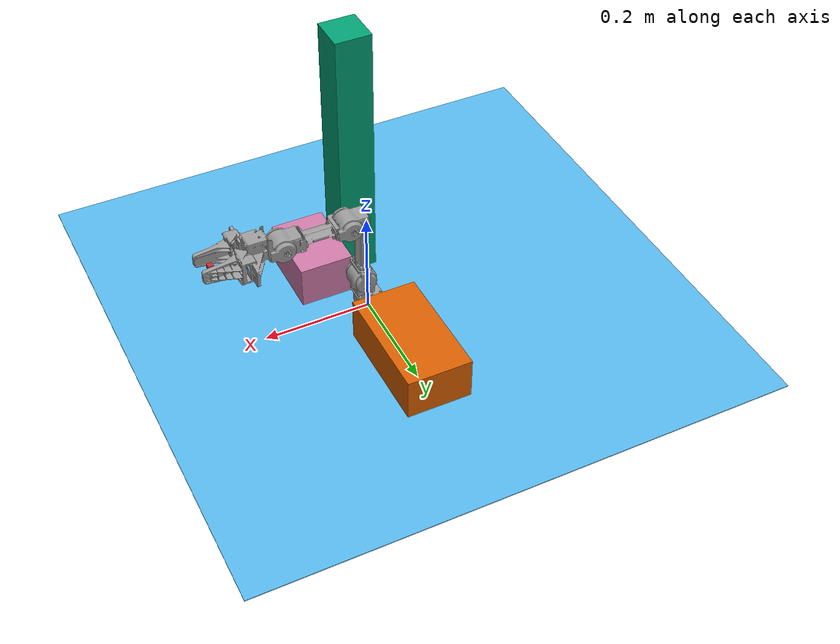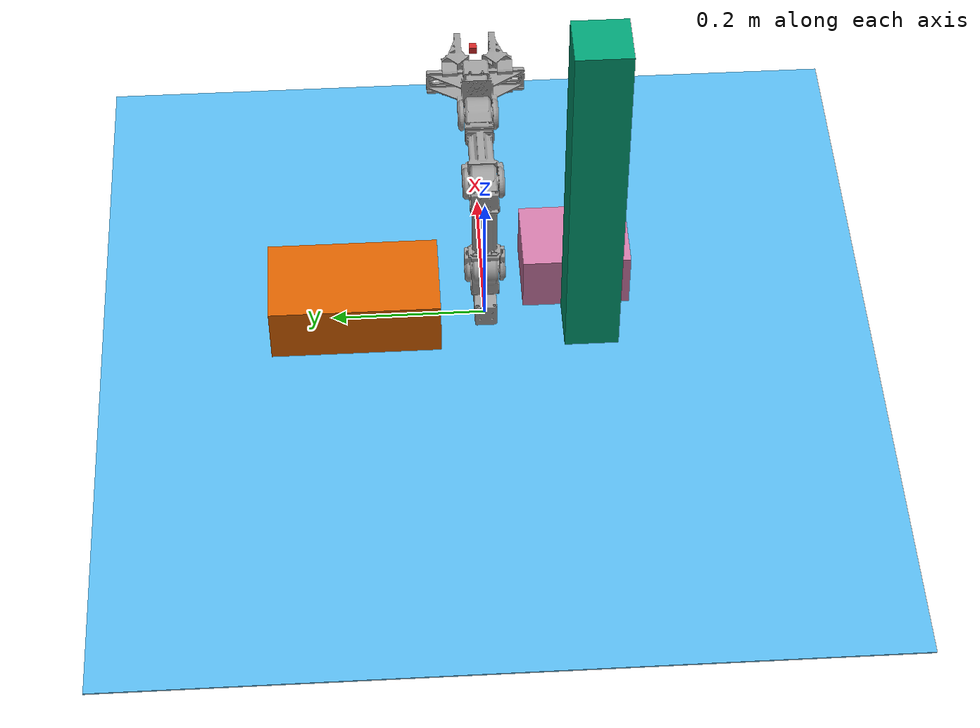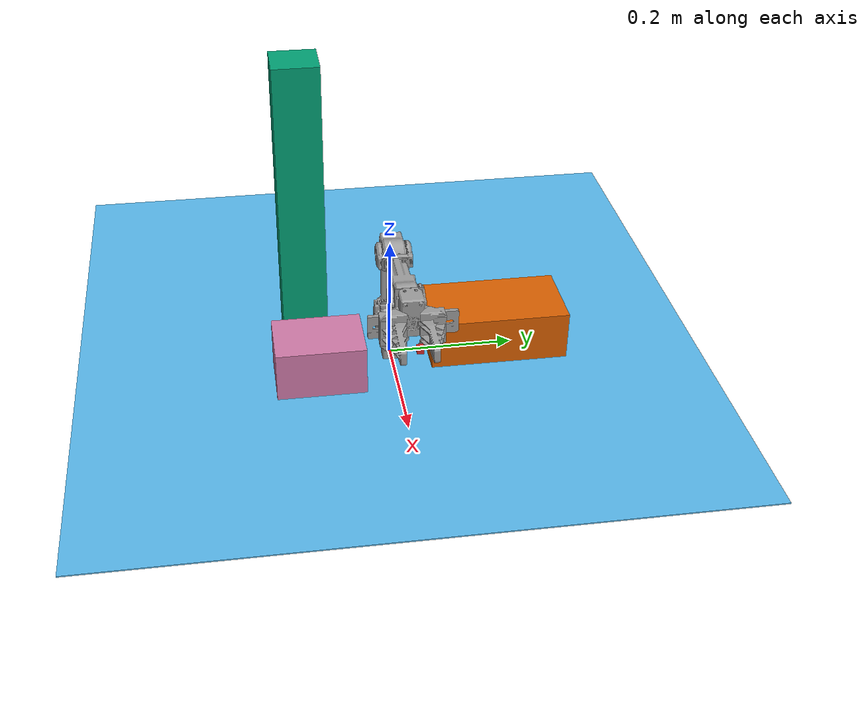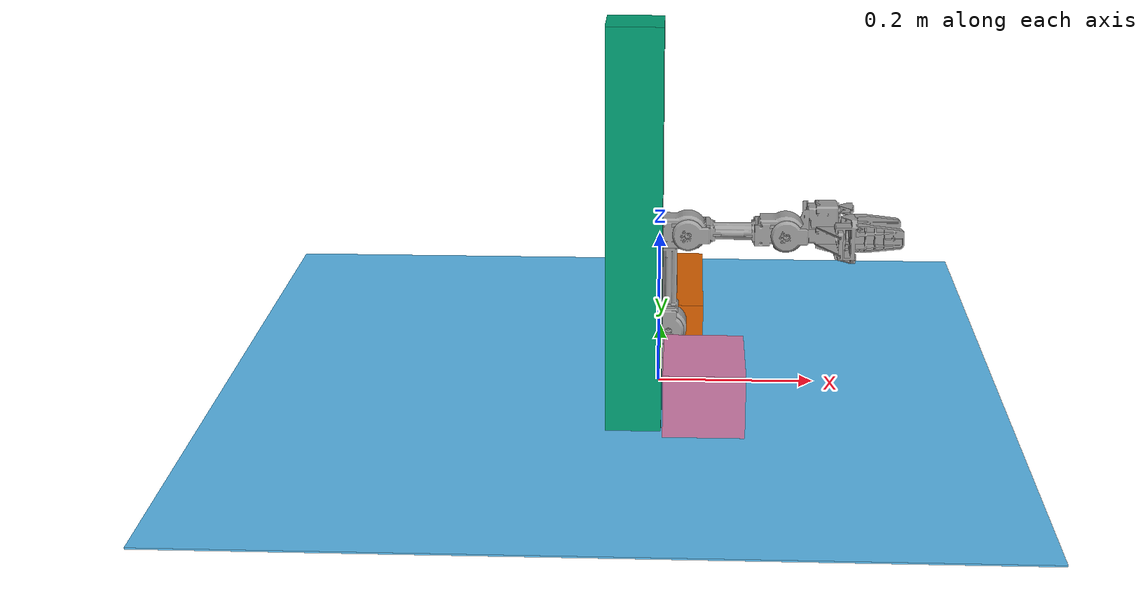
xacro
<?xml version="1.0"?>
<!-- Open_Manipulator Chain -->
<robot name="open_manipulator" xmlns:xacro="http://ros.org/wiki/xacro">

  <!-- Import all Gazebo-customization elements, including Gazebo colors -->
  <xacro:include filename="$(find open_manipulator_description)/urdf/open_manipulator.gazebo.xacro" />
  <!-- Import Rviz colors -->
  <xacro:include filename="$(find open_manipulator_description)/urdf/materials.xacro" />

  <!-- Transmission macro -->
  <xacro:macro name="SimpleTransmission" params="joint n">
    <transmission name="tran${n}">
      <type>transmission_interface/SimpleTransmission</type>
      <joint name="${joint}">
        <hardwareInterface>hardware_interface/PositionJointInterface</hardwareInterface>
      </joint>
      <actuator name="motor${n}">
        <hardwareInterface>hardware_interface/PositionJointInterface</hardwareInterface>
        <mechanicalReduction>1</mechanicalReduction>
      </actuator>
    </transmission>
  </xacro:macro>

  <!-- World -->
  <link name="world">
  </link>

  <!-- World fixed joint-->
  <joint name="world_fixed" type="fixed">
    <origin xyz="0 0 0" rpy="0 0 0"/>
    <parent link="world"/>
    <child link="link1"/>
  </joint>

 <joint name="obstaclebegin" type="fixed">
 <parent link="world"/>
 <child link="platform"/>
 <origin xyz="-0.06275 0 0"/>
</joint>

 <link name="platform">
  <visual>
   <geometry>
    <box size="1 1 0.002"/>
   </geometry>
    <origin xyz="0 0 -0.00111"/>
  </visual>
  <colission>
    <geometry>
    <box size="1 1 0.002"/>
   </geometry>
    <origin xyz="0 0 -0.00111"/>
  </colission>
 </link>

<joint name="platform_to_statief" type="fixed">
 <parent link="platform"/>
 <child link="statiefcamera"/>
 <origin xyz="0.03399 -0.135 0.25"/>
</joint>

<link name="statiefcamera">
 <visual>
  <geometry>
   <box size="0.068 0.07 0.5"/>
  </geometry>
 </visual>
 <collision>
 <geometry>
  <box size="0.068 0.07 0.5"/>
 </geometry>
 </collision>
</link>

<link name= "usb_cam_nep">
</link>

<joint name = "usb_cam_nep_to_statief" type="fixed">
<parent link = "statiefcamera"/>
<child link = "usb_cam_nep"/>
<origin xyz = " 0.03 0.052  0.17" rpy="1.57 0 2.09"/>
<!--rpy="90 0 120"/-->
</joint>

<link name= "usb_cam">
<origin rpy="	65 0 30"/>
</link>

<joint name = "usb_cam_nep_to_usb_cam" type="fixed">
<parent link = "usb_cam_nep"/>
<child link = "usb_cam"/>
<origin xyz = " 0 0 0" rpy="-1.13 0 3.14"/>
</joint>

<joint name="platform_to_openrc" type="fixed">
<parent link="platform"/>
<child link="openrc"/>
<origin xyz="0.060 0.17 0.041" />
</joint>

<link name="openrc">
 <visual>
 <geometry>
  <box size="0.120 0.22 0.08"/>
 </geometry>
 </visual>
 <collision>
  <geometry>
  <box size="0.120 0.22 0.08"/>
  </geometry>
 </collision>
</link>

<joint name="platform_to_raspberry" type="fixed">
<parent link="platform"/>
<child link="raspberry"/>
<origin xyz="0.12 -0.12 0.041"/>
</joint>

<link name="raspberry">
 <visual>
 <geometry>
  <box size="0.100 0.140 0.08"/>
 </geometry>
 </visual>
 <collision>
  <geometry>
  <box size="0.100 0.140 0.08"/>
  </geometry>
 </collision>
</link>

  <!-- Link 1 -->
  <link name="link1">
    <visual>
      <origin xyz="0 0 0" rpy="0 0 0"/>
      <geometry>
        <mesh filename="package://open_manipulator_description/meshes/chain_link1.stl" scale="0.001 0.001 0.001"/>
      </geometry>
      <material name="grey"/>
    </visual>

    <collision>
      <origin xyz="0 0 0" rpy="0 0 0"/>
      <geometry>
        <mesh filename="package://open_manipulator_description/meshes/chain_link1.stl" scale="0.001 0.001 0.001"/>
      </geometry>
    </collision>

     <inertial>
      <origin xyz="3.0876154e-04 0.0000000e+00 -1.2176461e-04" />
      <mass value="7.9119962e-02" />
      <inertia ixx="1.2505234e-05" ixy="0.0" ixz="-1.7855208e-07"
               iyy="2.1898364e-05" iyz="0.0"
               izz="1.9267361e-05" />
    </inertial>
  </link>

  <!-- Joint 1 -->
  <joint name="joint1" type="revolute">
    <parent link="link1"/>
    <child link="link2"/>
    <origin xyz="0.012 0.0 0.017" rpy="0 0 0"/>
    <axis xyz="0 0 1"/>
    <limit velocity="4.8" effort="1" lower="${-pi*0.9}" upper="${pi*0.9}" />
  </joint>

  <!-- Transmission 1 -->
  <xacro:SimpleTransmission n="1" joint="joint1" />

  <!--  Link 2 -->
  <link name="link2">
    <visual>
      <origin xyz="0 0 0.019" rpy="0 0 0"/>
      <geometry>
        <mesh filename="package://open_manipulator_description/meshes/chain_link2.stl" scale="0.001 0.001 0.001"/>
      </geometry>
      <material name="grey"/>
    </visual>

    <collision>
      <origin xyz="0 0 0.019" rpy="0 0 0"/>
      <geometry>
        <mesh filename="package://open_manipulator_description/meshes/chain_link2.stl" scale="0.001 0.001 0.001"/>
      </geometry>
    </collision>

     <inertial>
      <origin xyz="-3.0184870e-04 5.4043684e-04 ${0.018 + 2.9433464e-02}" />
      <mass value="9.8406837e-02" />
      <inertia ixx="3.4543422e-05" ixy="-1.6031095e-08" ixz="-3.8375155e-07"
               iyy="3.2689329e-05" iyz="2.8511935e-08"
               izz="1.8850320e-05" />
    </inertial>
  </link>

  <!--  Joint 2 -->
  <joint name="joint2" type="revolute">
    <parent link="link2"/>
    <child link="link3"/>
    <origin xyz="0.0 0.0 0.0595" rpy="0 0 0"/>
    <axis xyz="0 1 0"/>
    <limit velocity="4.8" effort="1" lower="${-pi*0.57}" upper="${pi*0.5}" />
  </joint>

  <!-- Transmission 2 -->
  <xacro:SimpleTransmission n="2" joint="joint2" />

  <!--  Link 3 -->
  <link name="link3">
    <visual>
      <origin xyz="0 0 0" rpy="0 0 0"/>
      <geometry>
        <mesh filename="package://open_manipulator_description/meshes/chain_link3.stl" scale="0.001 0.001 0.001"/>
      </geometry>
      <material name="grey"/>
    </visual>

    <collision>
      <origin xyz="0 0 0" rpy="0 0 0"/>
      <geometry>
        <mesh filename="package://open_manipulator_description/meshes/chain_link3.stl" scale="0.001 0.001 0.001"/>
      </geometry>
    </collision>

     <inertial>
      <origin xyz="1.0308393e-02 3.7743363e-04 1.0170197e-01" />
      <mass value="1.3850917e-01" />
      <inertia ixx="3.3055381e-04" ixy="-9.7940978e-08" ixz="-3.8505711e-05"
               iyy="3.4290447e-04" iyz="-1.5717516e-06"
               izz="6.0346498e-05" />
    </inertial>
  </link>

  <!--  Joint 3 -->
  <joint name="joint3" type="revolute">
    <parent link="link3"/>
    <child link="link4"/>
    <origin xyz="0.024 0 0.128" rpy="0 0 0"/>
    <axis xyz="0 1 0"/>
    <limit velocity="4.8" effort="1" lower="${-pi*0.3}" upper="${pi*0.44}" />
  </joint>

  <!-- Transmission 3 -->
  <xacro:SimpleTransmission n="3" joint="joint3" />

  <!--  Link 4 -->
  <link name="link4">
    <visual>
      <origin xyz="0 0 0" rpy="0 0 0"/>
      <geometry>
        <mesh filename="package://open_manipulator_description/meshes/chain_link4.stl" scale="0.001 0.001 0.001"/>
      </geometry>
      <material name="grey"/>
    </visual>

    <collision>
      <origin xyz="0 0 0" rpy="0 0 0"/>
      <geometry>
        <mesh filename="package://open_manipulator_description/meshes/chain_link4.stl" scale="0.001 0.001 0.001"/>
      </geometry>
    </collision>

     <inertial>
      <origin xyz="9.0909590e-02 3.8929816e-04 2.2413279e-04" />
      <mass value="1.3274562e-01" />
      <inertia ixx="3.0654178e-05" ixy="-1.2764155e-06" ixz="-2.6874417e-07"
               iyy="2.4230292e-04" iyz="1.1559550e-08"
               izz="2.5155057e-04" />
    </inertial>
  </link>

  <!--  Joint 4 -->
  <joint name="joint4" type="revolute">
    <parent link="link4"/>
    <child link="link5"/>
    <origin xyz="0.124 0.0 0.0" rpy="0 0 0"/>
    <axis xyz="0 1 0"/>
    <limit velocity="4.8" effort="1" lower="${-pi*0.57}" upper="${pi*0.65}" />
  </joint>

  <!-- Transmission 4 -->
  <xacro:SimpleTransmission n="4" joint="joint4" />

  <!--  Link 5 -->
  <link name="link5">
    <visual>
      <origin xyz="0 0 0" rpy="0 0 0"/>
      <geometry>
        <mesh filename="package://open_manipulator_description/meshes/chain_link5.stl" scale="0.001 0.001 0.001"/>
      </geometry>
      <material name="grey"/>
    </visual>

    <collision>
      <origin xyz="0 0 0" rpy="0 0 0"/>
      <geometry>
        <mesh filename="package://open_manipulator_description/meshes/chain_link5.stl" scale="0.001 0.001 0.001"/>
      </geometry>
    </collision>

     <inertial>
      <origin xyz="4.4206755e-02 3.6839985e-07 8.9142216e-03" />
      <mass value="1.4327573e-01" />
      <inertia ixx="8.0870749e-05" ixy="0.0" ixz="-1.0157896e-06"
               iyy="7.5980465e-05" iyz="0.0"
               izz="9.3127351e-05" />
    </inertial>
  </link>

  <!--  Gripper link -->
  <link name="gripper_link">
    <visual>
      <origin xyz="0.0 0.0 0" rpy="0 0 0"/>
      <geometry>
        <mesh filename="package://open_manipulator_description/meshes/chain_link_grip_l.stl" scale="0.001 0.001 0.001"/>
      </geometry>
      <material name="grey"/>
    </visual>

    <collision>
      <origin xyz="0.0 0.0 0" rpy="0 0 0"/>
      <geometry>
        <mesh filename="package://open_manipulator_description/meshes/chain_link_grip_l.stl" scale="0.001 0.001 0.001"/>
      </geometry>
    </collision>

    <inertial>
      <origin xyz="0 0 0" />
      <mass value="0.017" />
      <inertia ixx="1.0e-03" ixy="0.0" ixz="0.0"
               iyy="1.0e-03" iyz="0.0"
               izz="1.0e-03" />
    </inertial>

  </link>

  <!--  Gripper joint -->
  <joint name="gripper" type="prismatic">
    <parent link="link5"/>
    <child link="gripper_link"/>
    <origin xyz="0.0817 0.021 0.0" rpy="0 0 0"/>
    <axis xyz="0 1 0"/>
    <limit velocity="4.8" effort="1" lower="-0.010" upper="0.019" />
  </joint>

  <!-- Transmission 5 -->
  <xacro:SimpleTransmission n="5" joint="gripper" />

  <!--  Gripper link sub -->
  <link name="gripper_link_sub">
    <visual>
      <origin xyz="0.0 -0.0 0" rpy="0 0 0"/>
      <geometry>
        <mesh filename="package://open_manipulator_description/meshes/chain_link_grip_r.stl" scale="0.001 0.001 0.001"/>
      </geometry>
      <material name="grey"/>
    </visual>

    <collision>
      <origin xyz="0.0 -0.0 0" rpy="0 0 0"/>
      <geometry>
        <mesh filename="package://open_manipulator_description/meshes/chain_link_grip_r.stl" scale="0.001 0.001 0.001"/>
      </geometry>
    </collision>

    <inertial>
      <origin xyz="0 0 0" />
      <mass value="0.017" />
      <inertia ixx="1.0e-03" ixy="0.0" ixz="0.0"
               iyy="1.0e-03" iyz="0.0"
               izz="1.0e-03" />
    </inertial>

  </link>

  <!--  Gripper joint sub -->
  <joint name="gripper_sub" type="prismatic">
    <parent link="link5"/>
    <child link="gripper_link_sub"/>
    <origin xyz="0.0817 -0.021 0" rpy="0 0 0"/>
    <axis xyz="0 -1 0"/>
    <limit velocity="4.8" effort="1" lower="-0.010" upper="0.019" />
    <mimic joint="gripper" multiplier="1"/>
  </joint>

  <!-- Transmission 6 -->
  <xacro:SimpleTransmission n="6" joint="gripper_sub" />

  <!-- end effector joint -->
  <joint name="end_effector_joint" type="fixed">
    <origin xyz="0.126 0.0 0.0" rpy="0 0 0"/>
    <parent link="link5"/>
    <child link="end_effector_link"/>
  </joint>

  <!-- end effector link -->
  <link name="end_effector_link">
    <visual>
      <origin xyz="0 0 0" rpy="0 0 0"/>
      <geometry>
        <box size="0.01 0.01 0.01" />
      </geometry>
      <material name="red"/>
     </visual>

    <inertial>
      <origin xyz="0.0 0.0 0.0" rpy="0 0 0"/>
      <mass value="0.001"/>
      <inertia ixx="1.0e-06" ixy="0.0" ixz="0.0" iyy="1.0e-06" iyz="0.0" izz="1.0e-06" />
    </inertial>
  </link>

</robot>
